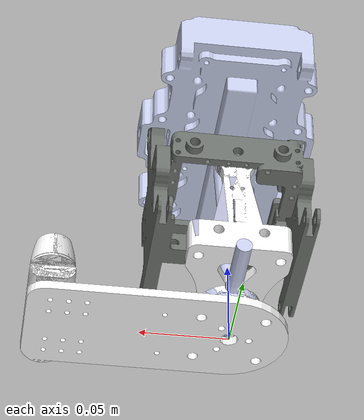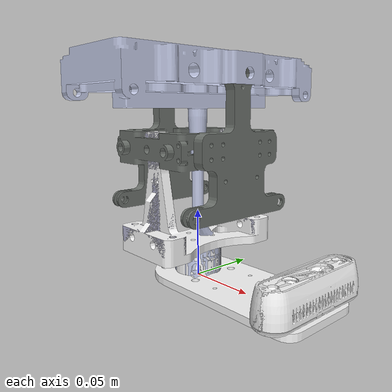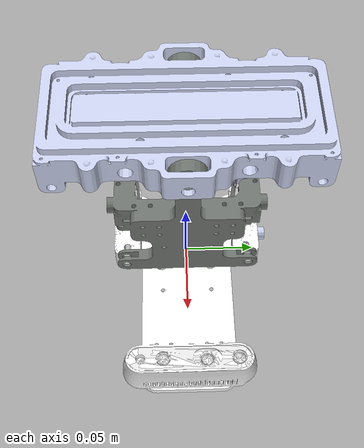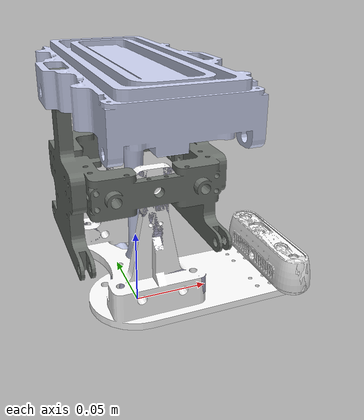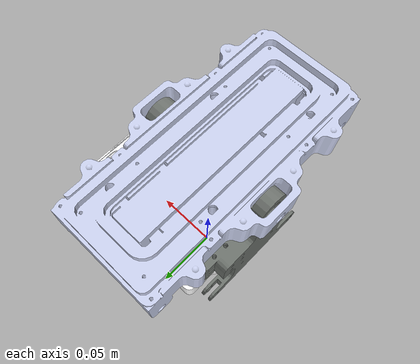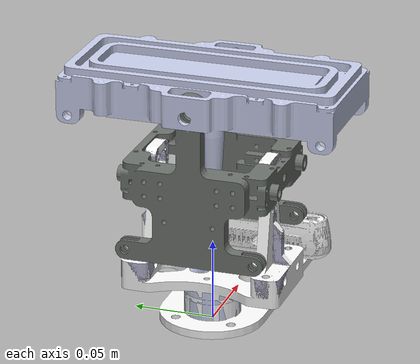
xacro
<?xml version="1.0" encoding="utf-8"?>
<robot name="asm_description" xmlns:xacro="http://www.ros.org/wiki/xacro">
  <link name="world"/>
  <joint name="world_to_base_link" type="fixed">
    <origin xyz="0 0 0" rpy="0 0 0"/>
    <parent link="world"/>
    <child link="base_link"/>
  </joint>

  <link name="base_link">
    <inertial>
      <origin xyz="0.043666 6.6613E-16 0.0025" rpy="0 0 0"/>
      <mass value="0.043002"/>
      <inertia ixx="1.4601E-05" ixy="-1.0055E-18" ixz="-2.5272E-21" iyy="6.817E-05" iyz="1.4737E-22" izz="8.2592E-05"/>
    </inertial>
    <visual>
      <origin xyz="0 0 0" rpy="0 0 0"/>
      <geometry>
        <mesh filename="file://$(find asm_description)/meshes/base_link.STL"/>
      </geometry>
      <material name="base_link_material">
        <color rgba="1 1 1 1"/>
      </material>
    </visual>
    <collision>
      <origin xyz="0 0 0" rpy="0 0 0"/>
      <geometry>
        <mesh filename="file://$(find asm_description)/meshes/base_link.STL"/>
      </geometry>
    </collision>
  </link>

  <link name="force_sensor_link">
    <inertial>
      <origin xyz="-0.00034904 0.00034904 -6.9694E-05" rpy="0 0 0"/>
      <mass value="0.01707"/>
      <inertia ixx="1.9259E-06" ixy="9.9778E-08" ixz="-1.7458E-08" iyy="1.9259E-06" iyz="1.7458E-08" izz="2.8862E-06"/>
    </inertial>
    <visual>
      <origin xyz="0 0 0" rpy="0 0 0"/>
      <geometry>
        <mesh filename="file://$(find asm_description)/meshes/force_sensor_link.STL"/>
      </geometry>
      <material name="force_sensor_material">
        <color rgba="0.79216 0.81961 0.93333 1"/>
      </material>
    </visual>
    <collision>
      <origin xyz="0 0 0" rpy="0 0 0"/>
      <geometry>
        <mesh filename="file://$(find asm_description)/meshes/force_sensor_link.STL"/>
      </geometry>
    </collision>
  </link>

  <joint name="force_sensor_joint" type="fixed">
    <origin xyz="0 0 0.0145" rpy="0 0 -3.1416"/>
    <parent link="base_link"/>
    <child link="force_sensor_link"/>
    <axis xyz="0 0 0"/>
    <limit lower="-3.1416" upper="3.1416" effort="20" velocity="0.5"/>
    <dynamics damping="10" friction="10"/>
  </joint>

  <gazebo reference="force_sensor_joint">
      <preserveFixedJoint>true</preserveFixedJoint>
      <provideFeedback>true</provideFeedback>
    </gazebo>

  <gazebo>
    <plugin name="ft_sensor" filename="libgazebo_ros_ft_sensor.so">
      <update_rate>500.0</update_rate>
      <joint_name>force_sensor_joint</joint_name>
      <topic_name>wrench</topic_name>
      <frame_name>force_sensor_link</frame_name>
      <gaussian_noise>0.0</gaussian_noise>
    </plugin>
  </gazebo>

  <link name="tool_base_link">
    <inertial>
      <origin xyz="3.1503E-15 0 0.01886" rpy="0 0 0"/>
      <mass value="0.065358"/>
      <inertia ixx="4.3832E-05" ixy="-3.1683E-20" ixz="-1.6598E-21" iyy="3.1672E-05" iyz="2.7529E-21" izz="3.6046E-05"/>
    </inertial>
    <visual>
      <origin xyz="0 0 0" rpy="0 0 0"/>
      <geometry>
        <mesh filename="file://$(find asm_description)/meshes/tool_base_link.STL"/>
      </geometry>
      <material name="tool_base_material">
        <color rgba="0.72216 0.71961 0.83333 1"/>
      </material>
    </visual>
    <collision>
      <origin xyz="0 0 0" rpy="0 0 0"/>
      <geometry>
        <mesh filename="file://$(find asm_description)/meshes/tool_base_link.STL"/>
      </geometry>
    </collision>
  </link>

  <joint name="tool_base_joint" type="fixed">
    <origin xyz="0 0 0.0095" rpy="0 0 3.1416"/>
    <parent link="force_sensor_link"/>
    <child link="tool_base_link"/>
    <axis xyz="0 0 0"/>
    <limit lower="-3.1416" upper="3.1416" effort="20" velocity="0.5"/>
    <dynamics damping="10" friction="10"/>
  </joint>

  <link name="tool_link1">
    <inertial>
      <origin xyz="-0.00057962 -0.00051221 -0.0055231" rpy="0 0 0"/>
      <mass value="0.099171"/>
      <inertia ixx="6.8128E-05" ixy="-8.4374E-08" ixz="3.0296E-14" iyy="5.472E-05" iyz="4.5685E-12" izz="3.1648E-05"/>
    </inertial>
    <visual>
      <origin xyz="0 0 0" rpy="0 0 0"/>
      <geometry>
        <mesh filename="file://$(find asm_description)/meshes/tool_link1.STL"/>
      </geometry>
      <material name="tool_link1_material">
        <color rgba="0.43137 0.45098 0.43137 1"/>
      </material>
    </visual>
    <collision>
      <origin xyz="0 0 0" rpy="0 0 0"/>
      <geometry>
        <mesh filename="file://$(find asm_description)/meshes/tool_link1.STL"/>
      </geometry>
    </collision>
  </link>

  <joint name="tool_joint1" type="revolute">
    <origin xyz="0 0 0.074" rpy="0 0 0"/>
    <parent link="tool_base_link"/>
    <child link="tool_link1"/>
    <axis xyz="0 -1 0"/>
    <limit lower="-0.150" upper="0.150" effort="20" velocity="0.5"/>
    <dynamics damping="10" friction="10"/>
  </joint>

  <link name="tool_link2">
    <inertial>
      <origin xyz="0.0002913455 0.000318296 -0.00323911" rpy="0 0 0"/>
      <mass value="0.88511"/>
      <inertia ixx="0.00154817856510197" ixy="4.02023704298794E-07" ixz="-5.40521590240743E-08" iyy="0.000250743675706725" iyz="-9.139856638242E-08" izz="0.00161984070330138"/>
    </inertial>
    <visual>
      <origin xyz="0 0 0" rpy="0 0 0"/>
      <geometry>
        <mesh filename="file://$(find asm_description)/meshes/tool_link2.STL"/>
      </geometry>
      <material name="tool_link2_material">
        <color rgba="0.79216 0.81961 0.93333 1"/>
      </material>
    </visual>
    <collision>
      <origin xyz="0 0 0" rpy="0 0 0"/>
      <geometry>
        <mesh filename="file://$(find asm_description)/meshes/tool_link2.STL"/>
      </geometry>
    </collision>
  </link>

  <joint name="tool_joint2" type="revolute">
    <origin xyz="0 0 0.0495" rpy="0 0 0"/>
    <parent link="tool_link1"/>
    <child link="tool_link2"/>
    <axis xyz="1 0 0"/>
    <limit lower="-0.30" upper="0.30" effort="20" velocity="0.5"/>
    <dynamics damping="10" friction="10"/>
  </joint>

  <link name="camera_link">
    <inertial>
      <origin xyz="0 0 0" rpy="0 0 0"/>
      <mass value="0"/>
      <inertia ixx="0" ixy="0" ixz="0" iyy="0" iyz="0" izz="0"/>
    </inertial>
    <visual>
      <origin xyz="0 0 0" rpy="0 0 0"/>
      <geometry>
        <mesh filename="file://$(find asm_description)/meshes/camera_link.STL"/>
      </geometry>
      <material name="camera_material">
        <color rgba="0.9 0.9 0.9 1"/>
      </material>
    </visual>
    <collision>
      <origin xyz="0 0 0" rpy="0 0 0"/>
      <geometry>
        <mesh filename="file://$(find asm_description)/meshes/camera_link.STL"/>
      </geometry>
    </collision>
  </link>

  <joint name="camera_joint" type="fixed">
    <origin xyz="0.1 -0.0011863 0.005" rpy="0 0 0"/>
    <parent link="base_link"/>
    <child link="camera_link"/>
    <axis xyz="0 0 0"/>
  </joint>
</robot>
